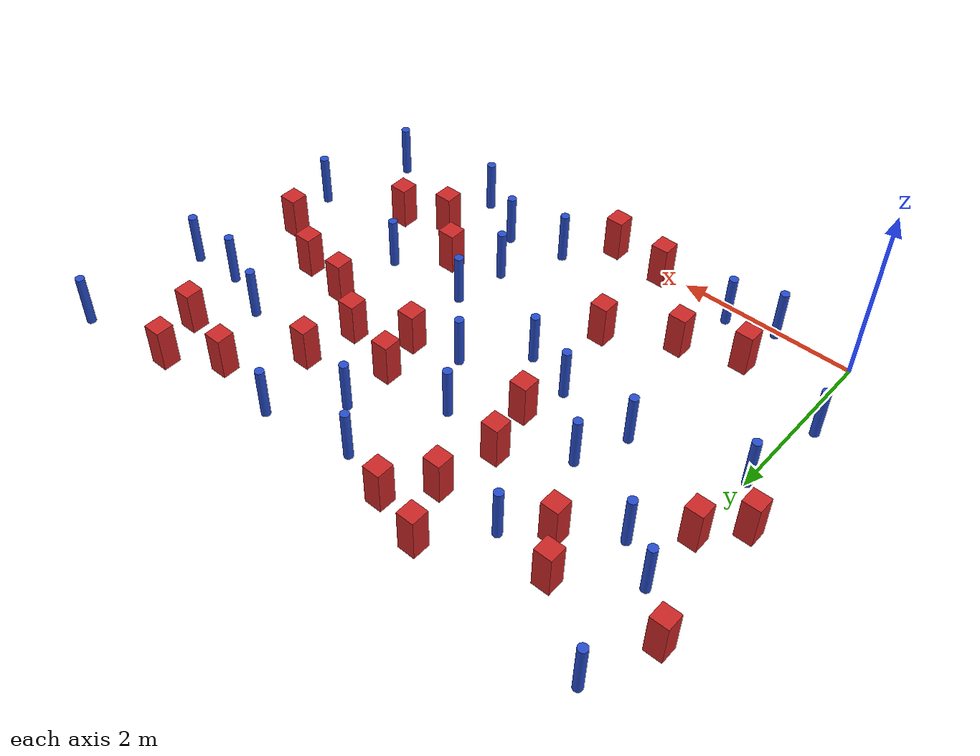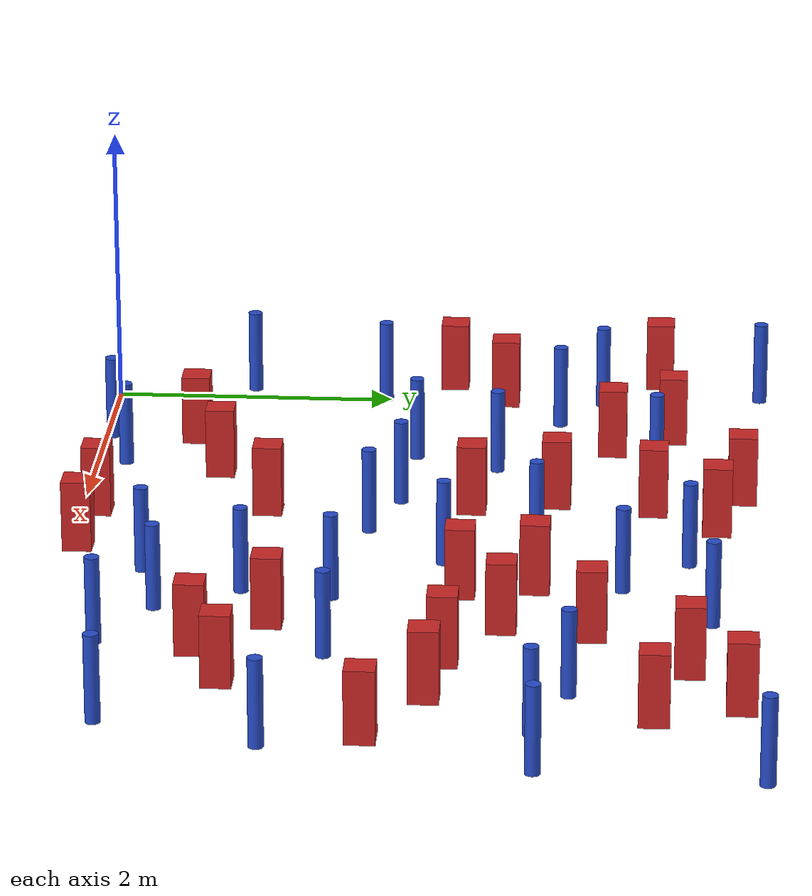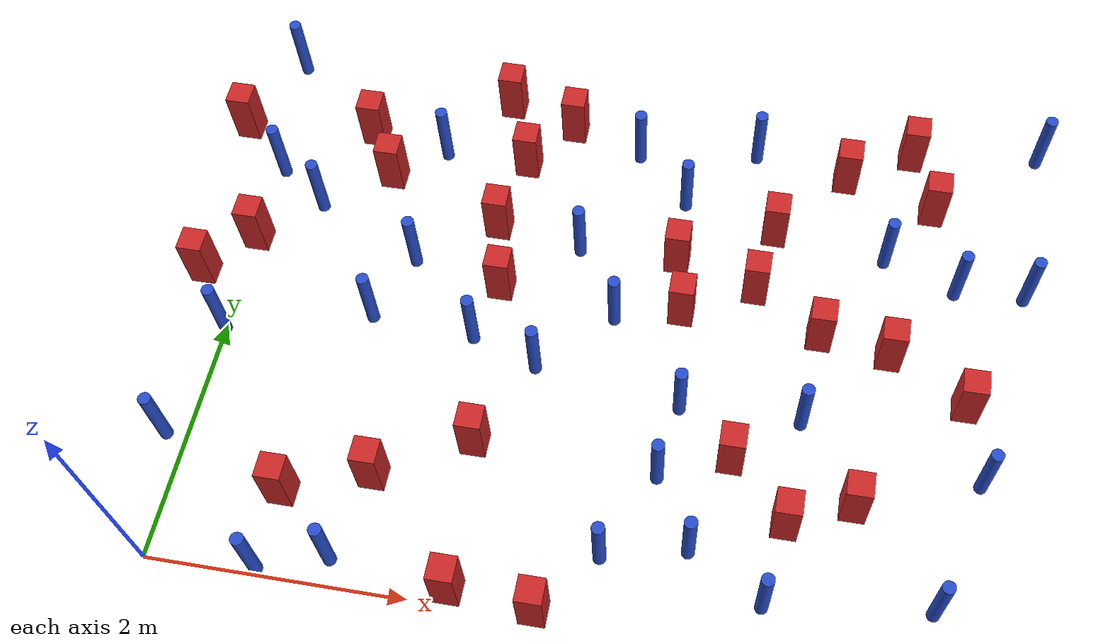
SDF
<sdf version="1.6">
 <model name="dense_75">
  <model name="pole_obstacle0">
   <static>true</static>
   <pose>5.79565178209 3.24629329432 7.38925637345e-09 -8.47170692798e-08 1.24976764937e-08 -1.74513093023e-07</pose>
   <link name="link">
    <pose>0 0 0.3 0 -0 0</pose>
    <inertial>
     <mass>1</mass>
     <inertia><ixx>0.145833</ixx><ixy>0</ixy><ixz>0</ixz><iyy>0.145833</iyy><iyz>0</iyz><izz>0.125</izz></inertia>
    </inertial>
    <collision name="collision">
     <geometry><cylinder><radius>0.05</radius><length>.6</length></cylinder></geometry>
    </collision>
    <visual name="visual">
     <geometry><cylinder><radius>0.05</radius><length>.6</length></cylinder></geometry>
     <material>
      <script><name>Gazebo/Blue</name><uri>file://media/materials/scripts/gazebo.material</uri></script>
     </material>
    </visual>
   </link>
  </model>
  <model name="square_post_obstacle2">
   <static>true</static>
   <pose>1.98064423771 3.28189115455 1.91545236811e-07 -7.35059704564e-06 1.12565212e-07 2.39332434364e-05</pose>
   <link name="link">
    <pose>0 0 0.25 0 -0 0</pose>
    <inertial>
     <mass>100</mass>
     <inertia>
      <ixx>0.166667</ixx>
      <ixy>0</ixy>
      <ixz>0</ixz>
      <iyy>0.166667</iyy>
      <iyz>0</iyz>
      <izz>0.166667</izz>
     </inertia>
    </inertial>
    <collision name="collision"><geometry><box><size>.2 .2 .5</size></box></geometry></collision>
    <visual name="visual">
     <geometry><box><size>.2 .2 .5</size></box></geometry>
     <material>
      <script><name>Gazebo/Red</name><uri>file://media/materials/scripts/gazebo.material</uri></script>
     </material>
    </visual>
   </link>
  </model>
  <model name="pole_obstacle12">
   <static>true</static>
   <pose>6.43960804948 4.71248183484 7.38925637345e-09 -8.47170692796e-08 1.24976764786e-08 -1.74513093032e-07</pose>
   <link name="link">
    <pose>0 0 0.3 0 -0 0</pose>
    <inertial>
     <mass>1</mass>
     <inertia><ixx>0.145833</ixx><ixy>0</ixy><ixz>0</ixz><iyy>0.145833</iyy><iyz>0</iyz><izz>0.125</izz></inertia>
    </inertial>
    <collision name="collision">
     <geometry><cylinder><radius>0.05</radius><length>.6</length></cylinder></geometry>
    </collision>
    <visual name="visual">
     <geometry><cylinder><radius>0.05</radius><length>.6</length></cylinder></geometry>
     <material>
      <script><name>Gazebo/Blue</name><uri>file://media/materials/scripts/gazebo.material</uri></script>
     </material>
    </visual>
   </link>
  </model>
  <model name="pole_obstacle15">
   <static>true</static>
   <pose>-0.00549938469334 1.96665930927 7.38925637345e-09 -8.471706928e-08 1.24976765085e-08 -1.74513093015e-07</pose>
   <link name="link">
    <pose>0 0 0.3 0 -0 0</pose>
    <inertial>
     <mass>1</mass>
     <inertia><ixx>0.145833</ixx><ixy>0</ixy><ixz>0</ixz><iyy>0.145833</iyy><iyz>0</iyz><izz>0.125</izz></inertia>
    </inertial>
    <collision name="collision">
     <geometry><cylinder><radius>0.05</radius><length>.6</length></cylinder></geometry>
    </collision>
    <visual name="visual">
     <geometry><cylinder><radius>0.05</radius><length>.6</length></cylinder></geometry>
     <material>
      <script><name>Gazebo/Blue</name><uri>file://media/materials/scripts/gazebo.material</uri></script>
     </material>
    </visual>
   </link>
  </model>
  <model name="square_post_obstacle17">
   <static>true</static>
   <pose>5.35984486681 4.55833261002 1.91545236811e-07 -7.35059704564e-06 1.12565212e-07 2.39332434364e-05</pose>
   <link name="link">
    <pose>0 0 0.25 0 -0 0</pose>
    <inertial>
     <mass>100</mass>
     <inertia>
      <ixx>0.166667</ixx>
      <ixy>0</ixy>
      <ixz>0</ixz>
      <iyy>0.166667</iyy>
      <iyz>0</iyz>
      <izz>0.166667</izz>
     </inertia>
    </inertial>
    <collision name="collision"><geometry><box><size>.2 .2 .5</size></box></geometry></collision>
    <visual name="visual">
     <geometry><box><size>.2 .2 .5</size></box></geometry>
     <material>
      <script><name>Gazebo/Red</name><uri>file://media/materials/scripts/gazebo.material</uri></script>
     </material>
    </visual>
   </link>
  </model>
  <model name="pole_obstacle21">
   <static>true</static>
   <pose>0.0212298474387 3.55706874163 7.38925637345e-09 -8.471706928e-08 1.24976765089e-08 -1.74513093014e-07</pose>
   <link name="link">
    <pose>0 0 0.3 0 -0 0</pose>
    <inertial>
     <mass>1</mass>
     <inertia><ixx>0.145833</ixx><ixy>0</ixy><ixz>0</ixz><iyy>0.145833</iyy><iyz>0</iyz><izz>0.125</izz></inertia>
    </inertial>
    <collision name="collision">
     <geometry><cylinder><radius>0.05</radius><length>.6</length></cylinder></geometry>
    </collision>
    <visual name="visual">
     <geometry><cylinder><radius>0.05</radius><length>.6</length></cylinder></geometry>
     <material>
      <script><name>Gazebo/Blue</name><uri>file://media/materials/scripts/gazebo.material</uri></script>
     </material>
    </visual>
   </link>
  </model>
  <model name="pole_obstacle40">
   <static>true</static>
   <pose>6.35808091005 3.28109023277 7.38925637345e-09 -8.47170692798e-08 1.24976764937e-08 -1.74513093023e-07</pose>
   <link name="link">
    <pose>0 0 0.3 0 -0 0</pose>
    <inertial>
     <mass>1</mass>
     <inertia><ixx>0.145833</ixx><ixy>0</ixy><ixz>0</ixz><iyy>0.145833</iyy><iyz>0</iyz><izz>0.125</izz></inertia>
    </inertial>
    <collision name="collision">
     <geometry><cylinder><radius>0.05</radius><length>.6</length></cylinder></geometry>
    </collision>
    <visual name="visual">
     <geometry><cylinder><radius>0.05</radius><length>.6</length></cylinder></geometry>
     <material>
      <script><name>Gazebo/Blue</name><uri>file://media/materials/scripts/gazebo.material</uri></script>
     </material>
    </visual>
   </link>
  </model>
  <model name="pole_obstacle46">
   <static>true</static>
   <pose>4.03932747048 4.36891801935 7.38925637345e-09 -8.47170692796e-08 1.24976764793e-08 -1.74513093032e-07</pose>
   <link name="link">
    <pose>0 0 0.3 0 -0 0</pose>
    <inertial>
     <mass>1</mass>
     <inertia><ixx>0.145833</ixx><ixy>0</ixy><ixz>0</ixz><iyy>0.145833</iyy><iyz>0</iyz><izz>0.125</izz></inertia>
    </inertial>
    <collision name="collision">
     <geometry><cylinder><radius>0.05</radius><length>.6</length></cylinder></geometry>
    </collision>
    <visual name="visual">
     <geometry><cylinder><radius>0.05</radius><length>.6</length></cylinder></geometry>
     <material>
      <script><name>Gazebo/Blue</name><uri>file://media/materials/scripts/gazebo.material</uri></script>
     </material>
    </visual>
   </link>
  </model>
  <model name="pole_obstacle52">
   <static>true</static>
   <pose>2.54015641414 2.01648973834 7.38925637345e-09 -8.47170692799e-08 1.24976765087e-08 -1.74513093015e-07</pose>
   <link name="link">
    <pose>0 0 0.3 0 -0 0</pose>
    <inertial>
     <mass>1</mass>
     <inertia><ixx>0.145833</ixx><ixy>0</ixy><ixz>0</ixz><iyy>0.145833</iyy><iyz>0</iyz><izz>0.125</izz></inertia>
    </inertial>
    <collision name="collision">
     <geometry><cylinder><radius>0.05</radius><length>.6</length></cylinder></geometry>
    </collision>
    <visual name="visual">
     <geometry><cylinder><radius>0.05</radius><length>.6</length></cylinder></geometry>
     <material>
      <script><name>Gazebo/Blue</name><uri>file://media/materials/scripts/gazebo.material</uri></script>
     </material>
    </visual>
   </link>
  </model>
  <model name="square_post_obstacle41">
   <static>true</static>
   <pose>5.1234105773 1.2262654958 1.91545236811e-07 -7.35059704564e-06 1.12565212e-07 2.39332434364e-05</pose>
   <link name="link">
    <pose>0 0 0.25 0 -0 0</pose>
    <inertial>
     <mass>100</mass>
     <inertia>
      <ixx>0.166667</ixx>
      <ixy>0</ixy>
      <ixz>0</ixz>
      <iyy>0.166667</iyy>
      <iyz>0</iyz>
      <izz>0.166667</izz>
     </inertia>
    </inertial>
    <collision name="collision"><geometry><box><size>.2 .2 .5</size></box></geometry></collision>
    <visual name="visual">
     <geometry><box><size>.2 .2 .5</size></box></geometry>
     <material>
      <script><name>Gazebo/Red</name><uri>file://media/materials/scripts/gazebo.material</uri></script>
     </material>
    </visual>
   </link>
  </model>
  <model name="square_post_obstacle46">
   <static>true</static>
   <pose>0.974590527266 3.6486881432 1.91545236811e-07 -7.35059704564e-06 1.12565212e-07 2.39332434364e-05</pose>
   <link name="link">
    <pose>0 0 0.25 0 -0 0</pose>
    <inertial>
     <mass>100</mass>
     <inertia>
      <ixx>0.166667</ixx>
      <ixy>0</ixy>
      <ixz>0</ixz>
      <iyy>0.166667</iyy>
      <iyz>0</iyz>
      <izz>0.166667</izz>
     </inertia>
    </inertial>
    <collision name="collision"><geometry><box><size>.2 .2 .5</size></box></geometry></collision>
    <visual name="visual">
     <geometry><box><size>.2 .2 .5</size></box></geometry>
     <material>
      <script><name>Gazebo/Red</name><uri>file://media/materials/scripts/gazebo.material</uri></script>
     </material>
    </visual>
   </link>
  </model>
  <model name="pole_obstacle61">
   <static>true</static>
   <pose>5.76309242376 0.512502309645 7.38925637345e-09 -8.471706928e-08 1.24976765164e-08 -1.74513093012e-07</pose>
   <link name="link">
    <pose>0 0 0.3 0 -0 0</pose>
    <inertial>
     <mass>1</mass>
     <inertia><ixx>0.145833</ixx><ixy>0</ixy><ixz>0</ixz><iyy>0.145833</iyy><iyz>0</iyz><izz>0.125</izz></inertia>
    </inertial>
    <collision name="collision">
     <geometry><cylinder><radius>0.05</radius><length>.6</length></cylinder></geometry>
    </collision>
    <visual name="visual">
     <geometry><cylinder><radius>0.05</radius><length>.6</length></cylinder></geometry>
     <material>
      <script><name>Gazebo/Blue</name><uri>file://media/materials/scripts/gazebo.material</uri></script>
     </material>
    </visual>
   </link>
  </model>
  <model name="square_post_obstacle48">
   <static>true</static>
   <pose>4.17831034952 2.99418077874 1.91545236811e-07 -7.35059704564e-06 1.12565212e-07 2.39332434364e-05</pose>
   <link name="link">
    <pose>0 0 0.25 0 -0 0</pose>
    <inertial>
     <mass>100</mass>
     <inertia>
      <ixx>0.166667</ixx>
      <ixy>0</ixy>
      <ixz>0</ixz>
      <iyy>0.166667</iyy>
      <iyz>0</iyz>
      <izz>0.166667</izz>
     </inertia>
    </inertial>
    <collision name="collision"><geometry><box><size>.2 .2 .5</size></box></geometry></collision>
    <visual name="visual">
     <geometry><box><size>.2 .2 .5</size></box></geometry>
     <material>
      <script><name>Gazebo/Red</name><uri>file://media/materials/scripts/gazebo.material</uri></script>
     </material>
    </visual>
   </link>
  </model>
  <model name="pole_obstacle63">
   <static>true</static>
   <pose>1.36518597686 0.2050313278 7.38925637345e-09 -8.47170692799e-08 1.24976765057e-08 -1.74513093016e-07</pose>
   <link name="link">
    <pose>0 0 0.3 0 -0 0</pose>
    <inertial>
     <mass>1</mass>
     <inertia><ixx>0.145833</ixx><ixy>0</ixy><ixz>0</ixz><iyy>0.145833</iyy><iyz>0</iyz><izz>0.125</izz></inertia>
    </inertial>
    <collision name="collision">
     <geometry><cylinder><radius>0.05</radius><length>.6</length></cylinder></geometry>
    </collision>
    <visual name="visual">
     <geometry><cylinder><radius>0.05</radius><length>.6</length></cylinder></geometry>
     <material>
      <script><name>Gazebo/Blue</name><uri>file://media/materials/scripts/gazebo.material</uri></script>
     </material>
    </visual>
   </link>
  </model>
  <model name="square_post_obstacle55">
   <static>true</static>
   <pose>2.92520480954 0.059473413802 1.91545236811e-07 -7.35059704564e-06 1.12565212e-07 2.39332434364e-05</pose>
   <link name="link">
    <pose>0 0 0.25 0 -0 0</pose>
    <inertial>
     <mass>100</mass>
     <inertia>
      <ixx>0.166667</ixx>
      <ixy>0</ixy>
      <ixz>0</ixz>
      <iyy>0.166667</iyy>
      <iyz>0</iyz>
      <izz>0.166667</izz>
     </inertia>
    </inertial>
    <collision name="collision"><geometry><box><size>.2 .2 .5</size></box></geometry></collision>
    <visual name="visual">
     <geometry><box><size>.2 .2 .5</size></box></geometry>
     <material>
      <script><name>Gazebo/Red</name><uri>file://media/materials/scripts/gazebo.material</uri></script>
     </material>
    </visual>
   </link>
  </model>
  <model name="square_post_obstacle57">
   <static>true</static>
   <pose>1.84150976464 4.57047507528 1.91545236811e-07 -7.35059704564e-06 1.12565212e-07 2.39332434364e-05</pose>
   <link name="link">
    <pose>0 0 0.25 0 -0 0</pose>
    <inertial>
     <mass>100</mass>
     <inertia>
      <ixx>0.166667</ixx>
      <ixy>0</ixy>
      <ixz>0</ixz>
      <iyy>0.166667</iyy>
      <iyz>0</iyz>
      <izz>0.166667</izz>
     </inertia>
    </inertial>
    <collision name="collision"><geometry><box><size>.2 .2 .5</size></box></geometry></collision>
    <visual name="visual">
     <geometry><box><size>.2 .2 .5</size></box></geometry>
     <material>
      <script><name>Gazebo/Red</name><uri>file://media/materials/scripts/gazebo.material</uri></script>
     </material>
    </visual>
   </link>
  </model>
  <model name="pole_obstacle70">
   <static>true</static>
   <pose>3.31954316364 0.541795663118 7.38925637345e-09 -8.471706928e-08 1.24976765147e-08 -1.74513093014e-07</pose>
   <link name="link">
    <pose>0 0 0.3 0 -0 0</pose>
    <inertial>
     <mass>1</mass>
     <inertia><ixx>0.145833</ixx><ixy>0</ixy><ixz>0</ixz><iyy>0.145833</iyy><iyz>0</iyz><izz>0.125</izz></inertia>
    </inertial>
    <collision name="collision">
     <geometry><cylinder><radius>0.05</radius><length>.6</length></cylinder></geometry>
    </collision>
    <visual name="visual">
     <geometry><cylinder><radius>0.05</radius><length>.6</length></cylinder></geometry>
     <material>
      <script><name>Gazebo/Blue</name><uri>file://media/materials/scripts/gazebo.material</uri></script>
     </material>
    </visual>
   </link>
  </model>
  <model name="pole_obstacle71">
   <static>true</static>
   <pose>3.08557280857 2.55786393119 7.38925637345e-09 -8.47170692798e-08 1.24976764939e-08 -1.74513093025e-07</pose>
   <link name="link">
    <pose>0 0 0.3 0 -0 0</pose>
    <inertial>
     <mass>1</mass>
     <inertia><ixx>0.145833</ixx><ixy>0</ixy><ixz>0</ixz><iyy>0.145833</iyy><iyz>0</iyz><izz>0.125</izz></inertia>
    </inertial>
    <collision name="collision">
     <geometry><cylinder><radius>0.05</radius><length>.6</length></cylinder></geometry>
    </collision>
    <visual name="visual">
     <geometry><cylinder><radius>0.05</radius><length>.6</length></cylinder></geometry>
     <material>
      <script><name>Gazebo/Blue</name><uri>file://media/materials/scripts/gazebo.material</uri></script>
     </material>
    </visual>
   </link>
  </model>
  <model name="pole_obstacle72">
   <static>true</static>
   <pose>3.72161464787 1.84509760989 7.38925637345e-09 -8.471706928e-08 1.24976765152e-08 -1.74513093012e-07</pose>
   <link name="link">
    <pose>0 0 0.3 0 -0 0</pose>
    <inertial>
     <mass>1</mass>
     <inertia><ixx>0.145833</ixx><ixy>0</ixy><ixz>0</ixz><iyy>0.145833</iyy><iyz>0</iyz><izz>0.125</izz></inertia>
    </inertial>
    <collision name="collision">
     <geometry><cylinder><radius>0.05</radius><length>.6</length></cylinder></geometry>
    </collision>
    <visual name="visual">
     <geometry><cylinder><radius>0.05</radius><length>.6</length></cylinder></geometry>
     <material>
      <script><name>Gazebo/Blue</name><uri>file://media/materials/scripts/gazebo.material</uri></script>
     </material>
    </visual>
   </link>
  </model>
  <model name="square_post_obstacle63">
   <static>true</static>
   <pose>4.81793300384 4.22754852804 1.91545236811e-07 -7.35059704564e-06 1.12565212e-07 2.39332434364e-05</pose>
   <link name="link">
    <pose>0 0 0.25 0 -0 0</pose>
    <inertial>
     <mass>100</mass>
     <inertia>
      <ixx>0.166667</ixx>
      <ixy>0</ixy>
      <ixz>0</ixz>
      <iyy>0.166667</iyy>
      <iyz>0</iyz>
      <izz>0.166667</izz>
     </inertia>
    </inertial>
    <collision name="collision"><geometry><box><size>.2 .2 .5</size></box></geometry></collision>
    <visual name="visual">
     <geometry><box><size>.2 .2 .5</size></box></geometry>
     <material>
      <script><name>Gazebo/Red</name><uri>file://media/materials/scripts/gazebo.material</uri></script>
     </material>
    </visual>
   </link>
  </model>
  <model name="square_post_obstacle69">
   <static>true</static>
   <pose>-0.410595506703 3.96939497935 1.91545236811e-07 -7.35059704564e-06 1.12565212e-07 2.39332434364e-05</pose>
   <link name="link">
    <pose>0 0 0.25 0 -0 0</pose>
    <inertial>
     <mass>100</mass>
     <inertia>
      <ixx>0.166667</ixx>
      <ixy>0</ixy>
      <ixz>0</ixz>
      <iyy>0.166667</iyy>
      <iyz>0</iyz>
      <izz>0.166667</izz>
     </inertia>
    </inertial>
    <collision name="collision"><geometry><box><size>.2 .2 .5</size></box></geometry></collision>
    <visual name="visual">
     <geometry><box><size>.2 .2 .5</size></box></geometry>
     <material>
      <script><name>Gazebo/Red</name><uri>file://media/materials/scripts/gazebo.material</uri></script>
     </material>
    </visual>
   </link>
  </model>
  <model name="pole_obstacle87">
   <static>true</static>
   <pose>4.53662758272 0.3645337959 7.38925637345e-09 -8.47170692798e-08 1.24976765003e-08 -1.7451309302e-07</pose>
   <link name="link">
    <pose>0 0 0.3 0 -0 0</pose>
    <inertial>
     <mass>1</mass>
     <inertia><ixx>0.145833</ixx><ixy>0</ixy><ixz>0</ixz><iyy>0.145833</iyy><iyz>0</iyz><izz>0.125</izz></inertia>
    </inertial>
    <collision name="collision">
     <geometry><cylinder><radius>0.05</radius><length>.6</length></cylinder></geometry>
    </collision>
    <visual name="visual">
     <geometry><cylinder><radius>0.05</radius><length>.6</length></cylinder></geometry>
     <material>
      <script><name>Gazebo/Blue</name><uri>file://media/materials/scripts/gazebo.material</uri></script>
     </material>
    </visual>
   </link>
  </model>
  <model name="pole_obstacle88">
   <static>true</static>
   <pose>4.67086178598 1.86783521227 7.38925637345e-09 -8.471706928e-08 1.24976765134e-08 -1.74513093015e-07</pose>
   <link name="link">
    <pose>0 0 0.3 0 -0 0</pose>
    <inertial>
     <mass>1</mass>
     <inertia><ixx>0.145833</ixx><ixy>0</ixy><ixz>0</ixz><iyy>0.145833</iyy><iyz>0</iyz><izz>0.125</izz></inertia>
    </inertial>
    <collision name="collision">
     <geometry><cylinder><radius>0.05</radius><length>.6</length></cylinder></geometry>
    </collision>
    <visual name="visual">
     <geometry><cylinder><radius>0.05</radius><length>.6</length></cylinder></geometry>
     <material>
      <script><name>Gazebo/Blue</name><uri>file://media/materials/scripts/gazebo.material</uri></script>
     </material>
    </visual>
   </link>
  </model>
  <model name="square_post_obstacle76">
   <static>true</static>
   <pose>5.5669575468 4.0092460769 1.91545236811e-07 -7.35059704564e-06 1.12565212e-07 2.39332434364e-05</pose>
   <link name="link">
    <pose>0 0 0.25 0 -0 0</pose>
    <inertial>
     <mass>100</mass>
     <inertia>
      <ixx>0.166667</ixx>
      <ixy>0</ixy>
      <ixz>0</ixz>
      <iyy>0.166667</iyy>
      <iyz>0</iyz>
      <izz>0.166667</izz>
     </inertia>
    </inertial>
    <collision name="collision"><geometry><box><size>.2 .2 .5</size></box></geometry></collision>
    <visual name="visual">
     <geometry><box><size>.2 .2 .5</size></box></geometry>
     <material>
      <script><name>Gazebo/Red</name><uri>file://media/materials/scripts/gazebo.material</uri></script>
     </material>
    </visual>
   </link>
  </model>
  <model name="square_post_obstacle78">
   <static>true</static>
   <pose>4.1712971239 1.46283462826 1.91545236811e-07 -7.35059704564e-06 1.12565212e-07 2.39332434364e-05</pose>
   <link name="link">
    <pose>0 0 0.25 0 -0 0</pose>
    <inertial>
     <mass>100</mass>
     <inertia>
      <ixx>0.166667</ixx>
      <ixy>0</ixy>
      <ixz>0</ixz>
      <iyy>0.166667</iyy>
      <iyz>0</iyz>
      <izz>0.166667</izz>
     </inertia>
    </inertial>
    <collision name="collision"><geometry><box><size>.2 .2 .5</size></box></geometry></collision>
    <visual name="visual">
     <geometry><box><size>.2 .2 .5</size></box></geometry>
     <material>
      <script><name>Gazebo/Red</name><uri>file://media/materials/scripts/gazebo.material</uri></script>
     </material>
    </visual>
   </link>
  </model>
  <model name="square_post_obstacle93">
   <static>true</static>
   <pose>5.92090708836 2.19788748319 1.91545236811e-07 -7.35059704564e-06 1.12565212e-07 2.39332434364e-05</pose>
   <link name="link">
    <pose>0 0 0.25 0 -0 0</pose>
    <inertial>
     <mass>100</mass>
     <inertia>
      <ixx>0.166667</ixx>
      <ixy>0</ixy>
      <ixz>0</ixz>
      <iyy>0.166667</iyy>
      <iyz>0</iyz>
      <izz>0.166667</izz>
     </inertia>
    </inertial>
    <collision name="collision"><geometry><box><size>.2 .2 .5</size></box></geometry></collision>
    <visual name="visual">
     <geometry><box><size>.2 .2 .5</size></box></geometry>
     <material>
      <script><name>Gazebo/Red</name><uri>file://media/materials/scripts/gazebo.material</uri></script>
     </material>
    </visual>
   </link>
  </model>
  <model name="pole_obstacle109">
   <static>true</static>
   <pose>1.14858013794 2.2610682756 7.38925637345e-09 -8.47170692799e-08 1.24976765053e-08 -1.74513093017e-07</pose>
   <link name="link">
    <pose>0 0 0.3 0 -0 0</pose>
    <inertial>
     <mass>1</mass>
     <inertia><ixx>0.145833</ixx><ixy>0</ixy><ixz>0</ixz><iyy>0.145833</iyy><iyz>0</iyz><izz>0.125</izz></inertia>
    </inertial>
    <collision name="collision">
     <geometry><cylinder><radius>0.05</radius><length>.6</length></cylinder></geometry>
    </collision>
    <visual name="visual">
     <geometry><cylinder><radius>0.05</radius><length>.6</length></cylinder></geometry>
     <material>
      <script><name>Gazebo/Blue</name><uri>file://media/materials/scripts/gazebo.material</uri></script>
     </material>
    </visual>
   </link>
  </model>
  <model name="pole_obstacle117">
   <static>true</static>
   <pose>1.36367780519 2.84333499804 7.38925637345e-09 -8.47170692799e-08 1.24976765053e-08 -1.74513093017e-07</pose>
   <link name="link">
    <pose>0 0 0.3 0 -0 0</pose>
    <inertial>
     <mass>1</mass>
     <inertia><ixx>0.145833</ixx><ixy>0</ixy><ixz>0</ixz><iyy>0.145833</iyy><iyz>0</iyz><izz>0.125</izz></inertia>
    </inertial>
    <collision name="collision">
     <geometry><cylinder><radius>0.05</radius><length>.6</length></cylinder></geometry>
    </collision>
    <visual name="visual">
     <geometry><cylinder><radius>0.05</radius><length>.6</length></cylinder></geometry>
     <material>
      <script><name>Gazebo/Blue</name><uri>file://media/materials/scripts/gazebo.material</uri></script>
     </material>
    </visual>
   </link>
  </model>
  <model name="square_post_obstacle118">
   <static>true</static>
   <pose>0.874296091192 0.661331358179 1.91545236811e-07 -7.35059704564e-06 1.12565212e-07 2.39332434364e-05</pose>
   <link name="link">
    <pose>0 0 0.25 0 -0 0</pose>
    <inertial>
     <mass>100</mass>
     <inertia>
      <ixx>0.166667</ixx>
      <ixy>0</ixy>
      <ixz>0</ixz>
      <iyy>0.166667</iyy>
      <iyz>0</iyz>
      <izz>0.166667</izz>
     </inertia>
    </inertial>
    <collision name="collision"><geometry><box><size>.2 .2 .5</size></box></geometry></collision>
    <visual name="visual">
     <geometry><box><size>.2 .2 .5</size></box></geometry>
     <material>
      <script><name>Gazebo/Red</name><uri>file://media/materials/scripts/gazebo.material</uri></script>
     </material>
    </visual>
   </link>
  </model>
  <model name="square_post_obstacle119">
   <static>true</static>
   <pose>0.706404112785 4.07528308677 1.91545236811e-07 -7.35059704564e-06 1.12565212e-07 2.39332434364e-05</pose>
   <link name="link">
    <pose>0 0 0.25 0 -0 0</pose>
    <inertial>
     <mass>100</mass>
     <inertia>
      <ixx>0.166667</ixx>
      <ixy>0</ixy>
      <ixz>0</ixz>
      <iyy>0.166667</iyy>
      <iyz>0</iyz>
      <izz>0.166667</izz>
     </inertia>
    </inertial>
    <collision name="collision"><geometry><box><size>.2 .2 .5</size></box></geometry></collision>
    <visual name="visual">
     <geometry><box><size>.2 .2 .5</size></box></geometry>
     <material>
      <script><name>Gazebo/Red</name><uri>file://media/materials/scripts/gazebo.material</uri></script>
     </material>
    </visual>
   </link>
  </model>
  <model name="pole_obstacle119">
   <static>true</static>
   <pose>1.99579034423 2.20148113534 7.38925637345e-09 -8.47170692799e-08 1.24976765015e-08 -1.74513093019e-07</pose>
   <link name="link">
    <pose>0 0 0.3 0 -0 0</pose>
    <inertial>
     <mass>1</mass>
     <inertia><ixx>0.145833</ixx><ixy>0</ixy><ixz>0</ixz><iyy>0.145833</iyy><iyz>0</iyz><izz>0.125</izz></inertia>
    </inertial>
    <collision name="collision">
     <geometry><cylinder><radius>0.05</radius><length>.6</length></cylinder></geometry>
    </collision>
    <visual name="visual">
     <geometry><cylinder><radius>0.05</radius><length>.6</length></cylinder></geometry>
     <material>
      <script><name>Gazebo/Blue</name><uri>file://media/materials/scripts/gazebo.material</uri></script>
     </material>
    </visual>
   </link>
  </model>
  <model name="pole_obstacle126">
   <static>true</static>
   <pose>1.36977288866 3.96485658691 7.38925637345e-09 -8.47170692799e-08 1.24976765077e-08 -1.74513093019e-07</pose>
   <link name="link">
    <pose>0 0 0.3 0 -0 0</pose>
    <inertial>
     <mass>1</mass>
     <inertia><ixx>0.145833</ixx><ixy>0</ixy><ixz>0</ixz><iyy>0.145833</iyy><iyz>0</iyz><izz>0.125</izz></inertia>
    </inertial>
    <collision name="collision">
     <geometry><cylinder><radius>0.05</radius><length>.6</length></cylinder></geometry>
    </collision>
    <visual name="visual">
     <geometry><cylinder><radius>0.05</radius><length>.6</length></cylinder></geometry>
     <material>
      <script><name>Gazebo/Blue</name><uri>file://media/materials/scripts/gazebo.material</uri></script>
     </material>
    </visual>
   </link>
  </model>
  <model name="square_post_obstacle126">
   <static>true</static>
   <pose>1.51753951992 0.897637026937 1.91545236811e-07 -7.35059704564e-06 1.12565212e-07 2.39332434364e-05</pose>
   <link name="link">
    <pose>0 0 0.25 0 -0 0</pose>
    <inertial>
     <mass>100</mass>
     <inertia>
      <ixx>0.166667</ixx>
      <ixy>0</ixy>
      <ixz>0</ixz>
      <iyy>0.166667</iyy>
      <iyz>0</iyz>
      <izz>0.166667</izz>
     </inertia>
    </inertial>
    <collision name="collision"><geometry><box><size>.2 .2 .5</size></box></geometry></collision>
    <visual name="visual">
     <geometry><box><size>.2 .2 .5</size></box></geometry>
     <material>
      <script><name>Gazebo/Red</name><uri>file://media/materials/scripts/gazebo.material</uri></script>
     </material>
    </visual>
   </link>
  </model>
  <model name="square_post_obstacle133">
   <static>true</static>
   <pose>3.61314633003 2.69601375244 1.91545236811e-07 -7.35059704564e-06 1.12565212e-07 2.39332434364e-05</pose>
   <link name="link">
    <pose>0 0 0.25 0 -0 0</pose>
    <inertial>
     <mass>100</mass>
     <inertia>
      <ixx>0.166667</ixx>
      <ixy>0</ixy>
      <ixz>0</ixz>
      <iyy>0.166667</iyy>
      <iyz>0</iyz>
      <izz>0.166667</izz>
     </inertia>
    </inertial>
    <collision name="collision"><geometry><box><size>.2 .2 .5</size></box></geometry></collision>
    <visual name="visual">
     <geometry><box><size>.2 .2 .5</size></box></geometry>
     <material>
      <script><name>Gazebo/Red</name><uri>file://media/materials/scripts/gazebo.material</uri></script>
     </material>
    </visual>
   </link>
  </model>
  <model name="square_post_obstacle135">
   <static>true</static>
   <pose>2.21392008811 1.29315399457 1.91545236811e-07 -7.35059704564e-06 1.12565212e-07 2.39332434364e-05</pose>
   <link name="link">
    <pose>0 0 0.25 0 -0 0</pose>
    <inertial>
     <mass>100</mass>
     <inertia>
      <ixx>0.166667</ixx>
      <ixy>0</ixy>
      <ixz>0</ixz>
      <iyy>0.166667</iyy>
      <iyz>0</iyz>
      <izz>0.166667</izz>
     </inertia>
    </inertial>
    <collision name="collision"><geometry><box><size>.2 .2 .5</size></box></geometry></collision>
    <visual name="visual">
     <geometry><box><size>.2 .2 .5</size></box></geometry>
     <material>
      <script><name>Gazebo/Red</name><uri>file://media/materials/scripts/gazebo.material</uri></script>
     </material>
    </visual>
   </link>
  </model>
  <model name="pole_obstacle143">
   <static>true</static>
   <pose>0.849795752767 0.0499306801016 7.38925637345e-09 -8.471706928e-08 1.24976765065e-08 -1.74513093017e-07</pose>
   <link name="link">
    <pose>0 0 0.3 0 -0 0</pose>
    <inertial>
     <mass>1</mass>
     <inertia><ixx>0.145833</ixx><ixy>0</ixy><ixz>0</ixz><iyy>0.145833</iyy><iyz>0</iyz><izz>0.125</izz></inertia>
    </inertial>
    <collision name="collision">
     <geometry><cylinder><radius>0.05</radius><length>.6</length></cylinder></geometry>
    </collision>
    <visual name="visual">
     <geometry><cylinder><radius>0.05</radius><length>.6</length></cylinder></geometry>
     <material>
      <script><name>Gazebo/Blue</name><uri>file://media/materials/scripts/gazebo.material</uri></script>
     </material>
    </visual>
   </link>
  </model>
  <model name="pole_obstacle152">
   <static>true</static>
   <pose>3.63840151549 1.23918178074 7.38925637345e-09 -8.471706928e-08 1.24976765152e-08 -1.74513093012e-07</pose>
   <link name="link">
    <pose>0 0 0.3 0 -0 0</pose>
    <inertial>
     <mass>1</mass>
     <inertia><ixx>0.145833</ixx><ixy>0</ixy><ixz>0</ixz><iyy>0.145833</iyy><iyz>0</iyz><izz>0.125</izz></inertia>
    </inertial>
    <collision name="collision">
     <geometry><cylinder><radius>0.05</radius><length>.6</length></cylinder></geometry>
    </collision>
    <visual name="visual">
     <geometry><cylinder><radius>0.05</radius><length>.6</length></cylinder></geometry>
     <material>
      <script><name>Gazebo/Blue</name><uri>file://media/materials/scripts/gazebo.material</uri></script>
     </material>
    </visual>
   </link>
  </model>
  <model name="pole_obstacle158">
   <static>true</static>
   <pose>0.4464275178 3.25878107382 7.38925637345e-09 -8.471706928e-08 1.24976765084e-08 -1.74513093017e-07</pose>
   <link name="link">
    <pose>0 0 0.3 0 -0 0</pose>
    <inertial>
     <mass>1</mass>
     <inertia><ixx>0.145833</ixx><ixy>0</ixy><ixz>0</ixz><iyy>0.145833</iyy><iyz>0</iyz><izz>0.125</izz></inertia>
    </inertial>
    <collision name="collision">
     <geometry><cylinder><radius>0.05</radius><length>.6</length></cylinder></geometry>
    </collision>
    <visual name="visual">
     <geometry><cylinder><radius>0.05</radius><length>.6</length></cylinder></geometry>
     <material>
      <script><name>Gazebo/Blue</name><uri>file://media/materials/scripts/gazebo.material</uri></script>
     </material>
    </visual>
   </link>
  </model>
  <model name="pole_obstacle160">
   <static>true</static>
   <pose>3.49769047025 3.77084705179 7.38925637345e-09 -8.47170692798e-08 1.24976764939e-08 -1.74513093025e-07</pose>
   <link name="link">
    <pose>0 0 0.3 0 -0 0</pose>
    <inertial>
     <mass>1</mass>
     <inertia><ixx>0.145833</ixx><ixy>0</ixy><ixz>0</ixz><iyy>0.145833</iyy><iyz>0</iyz><izz>0.125</izz></inertia>
    </inertial>
    <collision name="collision">
     <geometry><cylinder><radius>0.05</radius><length>.6</length></cylinder></geometry>
    </collision>
    <visual name="visual">
     <geometry><cylinder><radius>0.05</radius><length>.6</length></cylinder></geometry>
     <material>
      <script><name>Gazebo/Blue</name><uri>file://media/materials/scripts/gazebo.material</uri></script>
     </material>
    </visual>
   </link>
  </model>
  <model name="pole_obstacle162">
   <static>true</static>
   <pose>3.95597797329 0.689983834419 7.38925637345e-09 -8.471706928e-08 1.24976765197e-08 -1.74513093011e-07</pose>
   <link name="link">
    <pose>0 0 0.3 0 -0 0</pose>
    <inertial>
     <mass>1</mass>
     <inertia><ixx>0.145833</ixx><ixy>0</ixy><ixz>0</ixz><iyy>0.145833</iyy><iyz>0</iyz><izz>0.125</izz></inertia>
    </inertial>
    <collision name="collision">
     <geometry><cylinder><radius>0.05</radius><length>.6</length></cylinder></geometry>
    </collision>
    <visual name="visual">
     <geometry><cylinder><radius>0.05</radius><length>.6</length></cylinder></geometry>
     <material>
      <script><name>Gazebo/Blue</name><uri>file://media/materials/scripts/gazebo.material</uri></script>
     </material>
    </visual>
   </link>
  </model>
  <model name="pole_obstacle163">
   <static>true</static>
   <pose>3.03412758927 4.21098841876 7.38925637345e-09 -8.47170692798e-08 1.24976765033e-08 -1.74513093019e-07</pose>
   <link name="link">
    <pose>0 0 0.3 0 -0 0</pose>
    <inertial>
     <mass>1</mass>
     <inertia><ixx>0.145833</ixx><ixy>0</ixy><ixz>0</ixz><iyy>0.145833</iyy><iyz>0</iyz><izz>0.125</izz></inertia>
    </inertial>
    <collision name="collision">
     <geometry><cylinder><radius>0.05</radius><length>.6</length></cylinder></geometry>
    </collision>
    <visual name="visual">
     <geometry><cylinder><radius>0.05</radius><length>.6</length></cylinder></geometry>
     <material>
      <script><name>Gazebo/Blue</name><uri>file://media/materials/scripts/gazebo.material</uri></script>
     </material>
    </visual>
   </link>
  </model>
  <model name="square_post_obstacle154">
   <static>true</static>
   <pose>2.09719562698 3.95430755695 1.91545236811e-07 -7.35059704564e-06 1.12565212e-07 2.39332434364e-05</pose>
   <link name="link">
    <pose>0 0 0.25 0 -0 0</pose>
    <inertial>
     <mass>100</mass>
     <inertia>
      <ixx>0.166667</ixx>
      <ixy>0</ixy>
      <ixz>0</ixz>
      <iyy>0.166667</iyy>
      <iyz>0</iyz>
      <izz>0.166667</izz>
     </inertia>
    </inertial>
    <collision name="collision"><geometry><box><size>.2 .2 .5</size></box></geometry></collision>
    <visual name="visual">
     <geometry><box><size>.2 .2 .5</size></box></geometry>
     <material>
      <script><name>Gazebo/Red</name><uri>file://media/materials/scripts/gazebo.material</uri></script>
     </material>
    </visual>
   </link>
  </model>
  <model name="square_post_obstacle155">
   <static>true</static>
   <pose>0.00804916464883 2.84520469133 1.91545236811e-07 -7.35059704564e-06 1.12565212e-07 2.39332434364e-05</pose>
   <link name="link">
    <pose>0 0 0.25 0 -0 0</pose>
    <inertial>
     <mass>100</mass>
     <inertia>
      <ixx>0.166667</ixx>
      <ixy>0</ixy>
      <ixz>0</ixz>
      <iyy>0.166667</iyy>
      <iyz>0</iyz>
      <izz>0.166667</izz>
     </inertia>
    </inertial>
    <collision name="collision"><geometry><box><size>.2 .2 .5</size></box></geometry></collision>
    <visual name="visual">
     <geometry><box><size>.2 .2 .5</size></box></geometry>
     <material>
      <script><name>Gazebo/Red</name><uri>file://media/materials/scripts/gazebo.material</uri></script>
     </material>
    </visual>
   </link>
  </model>
  <model name="pole_obstacle165">
   <static>true</static>
   <pose>-0.121538445485 4.70385264058 7.38925637345e-09 -8.47170692798e-08 1.2497676502e-08 -1.7451309302e-07</pose>
   <link name="link">
    <pose>0 0 0.3 0 -0 0</pose>
    <inertial>
     <mass>1</mass>
     <inertia><ixx>0.145833</ixx><ixy>0</ixy><ixz>0</ixz><iyy>0.145833</iyy><iyz>0</iyz><izz>0.125</izz></inertia>
    </inertial>
    <collision name="collision">
     <geometry><cylinder><radius>0.05</radius><length>.6</length></cylinder></geometry>
    </collision>
    <visual name="visual">
     <geometry><cylinder><radius>0.05</radius><length>.6</length></cylinder></geometry>
     <material>
      <script><name>Gazebo/Blue</name><uri>file://media/materials/scripts/gazebo.material</uri></script>
     </material>
    </visual>
   </link>
  </model>
  <model name="square_post_obstacle160">
   <static>true</static>
   <pose>-0.330229896656 2.45808597967 1.91545236811e-07 -7.35059704564e-06 1.12565212e-07 2.39332434364e-05</pose>
   <link name="link">
    <pose>0 0 0.25 0 -0 0</pose>
    <inertial>
     <mass>100</mass>
     <inertia>
      <ixx>0.166667</ixx>
      <ixy>0</ixy>
      <ixz>0</ixz>
      <iyy>0.166667</iyy>
      <iyz>0</iyz>
      <izz>0.166667</izz>
     </inertia>
    </inertial>
    <collision name="collision"><geometry><box><size>.2 .2 .5</size></box></geometry></collision>
    <visual name="visual">
     <geometry><box><size>.2 .2 .5</size></box></geometry>
     <material>
      <script><name>Gazebo/Red</name><uri>file://media/materials/scripts/gazebo.material</uri></script>
     </material>
    </visual>
   </link>
  </model>
  <model name="square_post_obstacle164">
   <static>true</static>
   <pose>2.12077987471 2.69887344729 1.91545236811e-07 -7.35059704564e-06 1.12565212e-07 2.39332434364e-05</pose>
   <link name="link">
    <pose>0 0 0.25 0 -0 0</pose>
    <inertial>
     <mass>100</mass>
     <inertia>
      <ixx>0.166667</ixx>
      <ixy>0</ixy>
      <ixz>0</ixz>
      <iyy>0.166667</iyy>
      <iyz>0</iyz>
      <izz>0.166667</izz>
     </inertia>
    </inertial>
    <collision name="collision"><geometry><box><size>.2 .2 .5</size></box></geometry></collision>
    <visual name="visual">
     <geometry><box><size>.2 .2 .5</size></box></geometry>
     <material>
      <script><name>Gazebo/Red</name><uri>file://media/materials/scripts/gazebo.material</uri></script>
     </material>
    </visual>
   </link>
  </model>
  <model name="square_post_obstacle165">
   <static>true</static>
   <pose>2.28201541743 0.114228856318 1.91545236811e-07 -7.35059704564e-06 1.12565212e-07 2.39332434364e-05</pose>
   <link name="link">
    <pose>0 0 0.25 0 -0 0</pose>
    <inertial>
     <mass>100</mass>
     <inertia>
      <ixx>0.166667</ixx>
      <ixy>0</ixy>
      <ixz>0</ixz>
      <iyy>0.166667</iyy>
      <iyz>0</iyz>
      <izz>0.166667</izz>
     </inertia>
    </inertial>
    <collision name="collision"><geometry><box><size>.2 .2 .5</size></box></geometry></collision>
    <visual name="visual">
     <geometry><box><size>.2 .2 .5</size></box></geometry>
     <material>
      <script><name>Gazebo/Red</name><uri>file://media/materials/scripts/gazebo.material</uri></script>
     </material>
    </visual>
   </link>
  </model>
  <model name="pole_obstacle169">
   <static>true</static>
   <pose>-0.163406027281 0.987653286441 7.38925637345e-09 -8.47170692797e-08 1.24976764951e-08 -1.74513093022e-07</pose>
   <link name="link">
    <pose>0 0 0.3 0 -0 0</pose>
    <inertial>
     <mass>1</mass>
     <inertia><ixx>0.145833</ixx><ixy>0</ixy><ixz>0</ixz><iyy>0.145833</iyy><iyz>0</iyz><izz>0.125</izz></inertia>
    </inertial>
    <collision name="collision">
     <geometry><cylinder><radius>0.05</radius><length>.6</length></cylinder></geometry>
    </collision>
    <visual name="visual">
     <geometry><cylinder><radius>0.05</radius><length>.6</length></cylinder></geometry>
     <material>
      <script><name>Gazebo/Blue</name><uri>file://media/materials/scripts/gazebo.material</uri></script>
     </material>
    </visual>
   </link>
  </model>
  <model name="square_post_obstacle173">
   <static>true</static>
   <pose>4.73627132165 2.64170982437 1.91545236811e-07 -7.35059704564e-06 1.12565212e-07 2.39332434364e-05</pose>
   <link name="link">
    <pose>0 0 0.25 0 -0 0</pose>
    <inertial>
     <mass>100</mass>
     <inertia>
      <ixx>0.166667</ixx>
      <ixy>0</ixy>
      <ixz>0</ixz>
      <iyy>0.166667</iyy>
      <iyz>0</iyz>
      <izz>0.166667</izz>
     </inertia>
    </inertial>
    <collision name="collision"><geometry><box><size>.2 .2 .5</size></box></geometry></collision>
    <visual name="visual">
     <geometry><box><size>.2 .2 .5</size></box></geometry>
     <material>
      <script><name>Gazebo/Red</name><uri>file://media/materials/scripts/gazebo.material</uri></script>
     </material>
    </visual>
   </link>
  </model>
  <model name="pole_obstacle178">
   <static>true</static>
   <pose>6.06681580017 1.56288946759 7.38925637345e-09 -8.471706928e-08 1.24976765134e-08 -1.74513093015e-07</pose>
   <link name="link">
    <pose>0 0 0.3 0 -0 0</pose>
    <inertial>
     <mass>1</mass>
     <inertia><ixx>0.145833</ixx><ixy>0</ixy><ixz>0</ixz><iyy>0.145833</iyy><iyz>0</iyz><izz>0.125</izz></inertia>
    </inertial>
    <collision name="collision">
     <geometry><cylinder><radius>0.05</radius><length>.6</length></cylinder></geometry>
    </collision>
    <visual name="visual">
     <geometry><cylinder><radius>0.05</radius><length>.6</length></cylinder></geometry>
     <material>
      <script><name>Gazebo/Blue</name><uri>file://media/materials/scripts/gazebo.material</uri></script>
     </material>
    </visual>
   </link>
  </model>
  <model name="pole_obstacle187">
   <static>true</static>
   <pose>2.6936249242 3.16740386555 7.38925637345e-09 -8.47170692798e-08 1.24976764939e-08 -1.74513093025e-07</pose>
   <link name="link">
    <pose>0 0 0.3 0 -0 0</pose>
    <inertial>
     <mass>1</mass>
     <inertia><ixx>0.145833</ixx><ixy>0</ixy><ixz>0</ixz><iyy>0.145833</iyy><iyz>0</iyz><izz>0.125</izz></inertia>
    </inertial>
    <collision name="collision">
     <geometry><cylinder><radius>0.05</radius><length>.6</length></cylinder></geometry>
    </collision>
    <visual name="visual">
     <geometry><cylinder><radius>0.05</radius><length>.6</length></cylinder></geometry>
     <material>
      <script><name>Gazebo/Blue</name><uri>file://media/materials/scripts/gazebo.material</uri></script>
     </material>
    </visual>
   </link>
  </model>
  <model name="square_post_obstacle193">
   <static>true</static>
   <pose>4.63312527328 1.00726321167 1.91545236811e-07 -7.35059704564e-06 1.12565212e-07 2.39332434364e-05</pose>
   <link name="link">
    <pose>0 0 0.25 0 -0 0</pose>
    <inertial>
     <mass>100</mass>
     <inertia>
      <ixx>0.166667</ixx>
      <ixy>0</ixy>
      <ixz>0</ixz>
      <iyy>0.166667</iyy>
      <iyz>0</iyz>
      <izz>0.166667</izz>
     </inertia>
    </inertial>
    <collision name="collision"><geometry><box><size>.2 .2 .5</size></box></geometry></collision>
    <visual name="visual">
     <geometry><box><size>.2 .2 .5</size></box></geometry>
     <material>
      <script><name>Gazebo/Red</name><uri>file://media/materials/scripts/gazebo.material</uri></script>
     </material>
    </visual>
   </link>
  </model>
  <model name="square_post_obstacle201">
   <static>true</static>
   <pose>5.297460387 2.55423966566 1.91545236811e-07 -7.35059704564e-06 1.12565212e-07 2.39332434364e-05</pose>
   <link name="link">
    <pose>0 0 0.25 0 -0 0</pose>
    <inertial>
     <mass>100</mass>
     <inertia>
      <ixx>0.166667</ixx>
      <ixy>0</ixy>
      <ixz>0</ixz>
      <iyy>0.166667</iyy>
      <iyz>0</iyz>
      <izz>0.166667</izz>
     </inertia>
    </inertial>
    <collision name="collision"><geometry><box><size>.2 .2 .5</size></box></geometry></collision>
    <visual name="visual">
     <geometry><box><size>.2 .2 .5</size></box></geometry>
     <material>
      <script><name>Gazebo/Red</name><uri>file://media/materials/scripts/gazebo.material</uri></script>
     </material>
    </visual>
   </link>
  </model>
  <model name="pole_obstacle197">
   <static>true</static>
   <pose>5.20477295822 3.46475944156 7.38925637345e-09 -8.47170692798e-08 1.24976764937e-08 -1.74513093023e-07</pose>
   <link name="link">
    <pose>0 0 0.3 0 -0 0</pose>
    <inertial>
     <mass>1</mass>
     <inertia><ixx>0.145833</ixx><ixy>0</ixy><ixz>0</ixz><iyy>0.145833</iyy><iyz>0</iyz><izz>0.125</izz></inertia>
    </inertial>
    <collision name="collision">
     <geometry><cylinder><radius>0.05</radius><length>.6</length></cylinder></geometry>
    </collision>
    <visual name="visual">
     <geometry><cylinder><radius>0.05</radius><length>.6</length></cylinder></geometry>
     <material>
      <script><name>Gazebo/Blue</name><uri>file://media/materials/scripts/gazebo.material</uri></script>
     </material>
    </visual>
   </link>
  </model>
  <model name="square_post_obstacle213">
   <static>true</static>
   <pose>2.42911379071 4.39527357582 1.91545236811e-07 -7.35059704564e-06 1.12565212e-07 2.39332434364e-05</pose>
   <link name="link">
    <pose>0 0 0.25 0 -0 0</pose>
    <inertial>
     <mass>100</mass>
     <inertia>
      <ixx>0.166667</ixx>
      <ixy>0</ixy>
      <ixz>0</ixz>
      <iyy>0.166667</iyy>
      <iyz>0</iyz>
      <izz>0.166667</izz>
     </inertia>
    </inertial>
    <collision name="collision"><geometry><box><size>.2 .2 .5</size></box></geometry></collision>
    <visual name="visual">
     <geometry><box><size>.2 .2 .5</size></box></geometry>
     <material>
      <script><name>Gazebo/Red</name><uri>file://media/materials/scripts/gazebo.material</uri></script>
     </material>
    </visual>
   </link>
  </model>
  <model name="square_post_obstacle214">
   <static>true</static>
   <pose>3.50704050266 3.18822274583 1.91545236811e-07 -7.35059704564e-06 1.12565212e-07 2.39332434364e-05</pose>
   <link name="link">
    <pose>0 0 0.25 0 -0 0</pose>
    <inertial>
     <mass>100</mass>
     <inertia>
      <ixx>0.166667</ixx>
      <ixy>0</ixy>
      <ixz>0</ixz>
      <iyy>0.166667</iyy>
      <iyz>0</iyz>
      <izz>0.166667</izz>
     </inertia>
    </inertial>
    <collision name="collision"><geometry><box><size>.2 .2 .5</size></box></geometry></collision>
    <visual name="visual">
     <geometry><box><size>.2 .2 .5</size></box></geometry>
     <material>
      <script><name>Gazebo/Red</name><uri>file://media/materials/scripts/gazebo.material</uri></script>
     </material>
    </visual>
   </link>
  </model>
  <model name="square_post_obstacle215">
   <static>true</static>
   <pose>4.27379233243 3.58449752563 1.91545236811e-07 -7.35059704564e-06 1.12565212e-07 2.39332434364e-05</pose>
   <link name="link">
    <pose>0 0 0.25 0 -0 0</pose>
    <inertial>
     <mass>100</mass>
     <inertia>
      <ixx>0.166667</ixx>
      <ixy>0</ixy>
      <ixz>0</ixz>
      <iyy>0.166667</iyy>
      <iyz>0</iyz>
      <izz>0.166667</izz>
     </inertia>
    </inertial>
    <collision name="collision"><geometry><box><size>.2 .2 .5</size></box></geometry></collision>
    <visual name="visual">
     <geometry><box><size>.2 .2 .5</size></box></geometry>
     <material>
      <script><name>Gazebo/Red</name><uri>file://media/materials/scripts/gazebo.material</uri></script>
     </material>
    </visual>
   </link>
  </model>
 </model>
</sdf>
